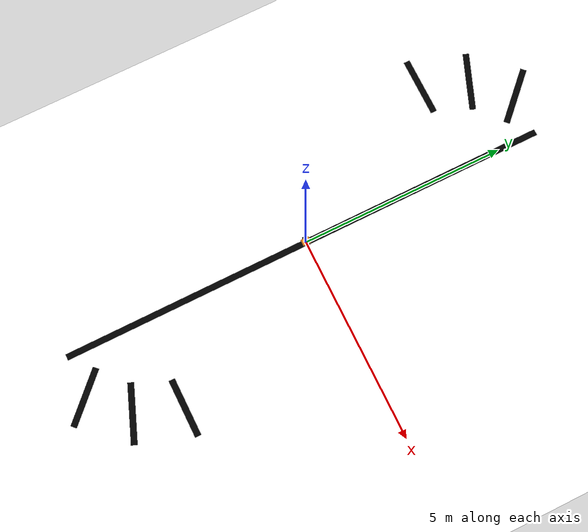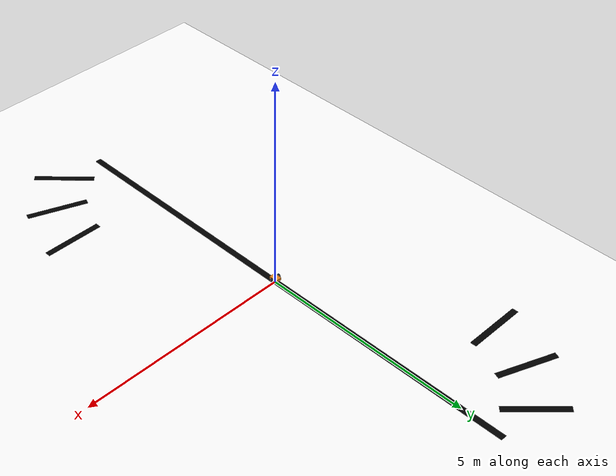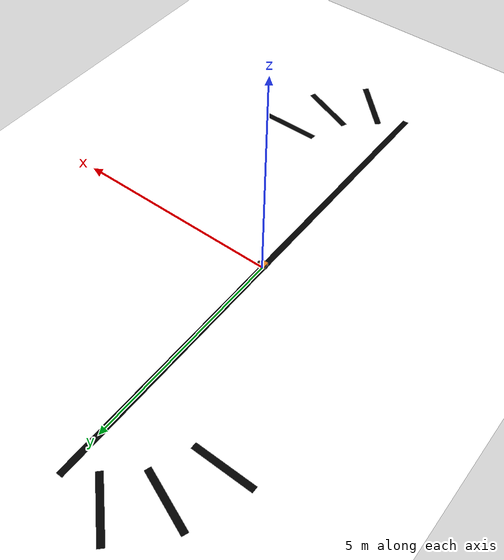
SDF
<?xml version="1.0" ?>
<sdf version="1.9">
  <world name="ir_world">
    <physics name="1ms" type="ignored">
      <max_step_size>0.001</max_step_size>
      <real_time_factor>1.0</real_time_factor>
    </physics>
    <plugin filename="gz-sim-physics-system" name="gz::sim::systems::Physics"/>
    <plugin filename="gz-sim-sensors-system" name="gz::sim::systems::Sensors">
      <render_engine>ogre2</render_engine>
    </plugin>
    <plugin filename="gz-sim-user-commands-system" name="gz::sim::systems::UserCommands"/>
    <plugin filename="gz-sim-scene-broadcaster-system" name="gz::sim::systems::SceneBroadcaster"/>
    <light name="sun" type="directional">
      <cast_shadows>false</cast_shadows>
      <pose>0 0 20 0 0 0</pose>
      <diffuse>1.0 1.0 1.0 1</diffuse>
      <specular>0.5 0.5 0.5 1</specular>
      <direction>0 0 -1</direction>
    </light>
    <model name="ground_plane">
      <static>true</static>
      <link name="link">
        <collision name="collision"><geometry><plane><normal>0 0 1</normal><size>20 20</size></plane></geometry></collision>
        <visual name="visual">
          <geometry><plane><normal>0 0 1</normal><size>20 20</size></plane></geometry>
          <material><ambient>1 1 1 1</ambient><diffuse>1 1 1 1</diffuse></material>
        </visual>
      </link>
    </model>
    <model name="line_straight_1"><static>true</static><pose>0 3 0.001 0 0 0</pose>
      <link name="link">
        <visual name="vis"><geometry><box><size>0.15 6 0.001</size></box></geometry><material><ambient>0 0 0 1</ambient><diffuse>0 0 0 1</diffuse></material></visual>
        <collision name="col"><geometry><box><size>0.15 6 0.001</size></box></geometry></collision>
      </link>
    </model>
    <model name="line_straight_2"><static>true</static><pose>0 -3 0.001 0 0 0</pose>
      <link name="link">
        <visual name="vis"><geometry><box><size>0.15 6 0.001</size></box></geometry><material><ambient>0 0 0 1</ambient><diffuse>0 0 0 1</diffuse></material></visual>
        <collision name="col"><geometry><box><size>0.15 6 0.001</size></box></geometry></collision>
      </link>
    </model>
    <model name="line_curve_n1"><static>true</static><pose>-1.0 6.0 0.001 0 0 0.785</pose>
      <link name="link"><visual name="vis"><geometry><box><size>0.15 1.4 0.001</size></box></geometry><material><ambient>0 0 0 1</ambient><diffuse>0 0 0 1</diffuse></material></visual><collision name="col"><geometry><box><size>0.15 1.4 0.001</size></box></geometry></collision></link></model>
    <model name="line_curve_n2"><static>true</static><pose>-1.8 5.2 0.001 0 0 1.2</pose>
      <link name="link"><visual name="vis"><geometry><box><size>0.15 1.4 0.001</size></box></geometry><material><ambient>0 0 0 1</ambient><diffuse>0 0 0 1</diffuse></material></visual><collision name="col"><geometry><box><size>0.15 1.4 0.001</size></box></geometry></collision></link></model>
    <model name="line_curve_n3"><static>true</static><pose>-2.2 4.1 0.001 0 0 1.57</pose>
      <link name="link"><visual name="vis"><geometry><box><size>0.15 1.4 0.001</size></box></geometry><material><ambient>0 0 0 1</ambient><diffuse>0 0 0 1</diffuse></material></visual><collision name="col"><geometry><box><size>0.15 1.4 0.001</size></box></geometry></collision></link></model>
    <model name="line_curve_s1"><static>true</static><pose>1.0 -6.0 0.001 0 0 0.785</pose>
      <link name="link"><visual name="vis"><geometry><box><size>0.15 1.4 0.001</size></box></geometry><material><ambient>0 0 0 1</ambient><diffuse>0 0 0 1</diffuse></material></visual><collision name="col"><geometry><box><size>0.15 1.4 0.001</size></box></geometry></collision></link></model>
    <model name="line_curve_s2"><static>true</static><pose>1.8 -5.2 0.001 0 0 1.2</pose>
      <link name="link"><visual name="vis"><geometry><box><size>0.15 1.4 0.001</size></box></geometry><material><ambient>0 0 0 1</ambient><diffuse>0 0 0 1</diffuse></material></visual><collision name="col"><geometry><box><size>0.15 1.4 0.001</size></box></geometry></collision></link></model>
    <model name="line_curve_s3"><static>true</static><pose>2.2 -4.1 0.001 0 0 1.57</pose>
      <link name="link"><visual name="vis"><geometry><box><size>0.15 1.4 0.001</size></box></geometry><material><ambient>0 0 0 1</ambient><diffuse>0 0 0 1</diffuse></material></visual><collision name="col"><geometry><box><size>0.15 1.4 0.001</size></box></geometry></collision></link></model>
    <include>
      <uri>model://ir_robot</uri>
      <pose>0 0 0.1 0 0 1.5707</pose>
    </include>
  </world>
</sdf>

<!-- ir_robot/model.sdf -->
<sdf version="1.9">
  <model name="ir_robot">
    <link name="base_link">
      <inertial><mass>2.0</mass><inertia><ixx>0.05</ixx><iyy>0.05</iyy><izz>0.05</izz></inertia></inertial>
      <collision name="col"><geometry><box><size>0.2 0.15 0.06</size></box></geometry></collision>
      <visual name="vis">
        <geometry><box><size>0.2 0.15 0.06</size></box></geometry>
        <material><ambient>0.9 0.5 0.1 1</ambient><diffuse>0.9 0.5 0.1 1</diffuse></material>
      </visual>
    </link>
    <link name="left_wheel">
      <pose>0 0.1 0 -1.5707 0 0</pose>
      <inertial><mass>0.5</mass><inertia><ixx>0.005</ixx><iyy>0.005</iyy><izz>0.005</izz></inertia></inertial>
      <collision name="col"><geometry><cylinder><radius>0.05</radius><length>0.02</length></cylinder></geometry></collision>
      <visual name="vis">
        <geometry><cylinder><radius>0.05</radius><length>0.02</length></cylinder></geometry>
        <material><ambient>0.1 0.1 0.1 1</ambient><diffuse>0.1 0.1 0.1 1</diffuse></material>
      </visual>
    </link>
    <link name="right_wheel">
      <pose>0 -0.1 0 -1.5707 0 0</pose>
      <inertial><mass>0.5</mass><inertia><ixx>0.005</ixx><iyy>0.005</iyy><izz>0.005</izz></inertia></inertial>
      <collision name="col"><geometry><cylinder><radius>0.05</radius><length>0.02</length></cylinder></geometry></collision>
      <visual name="vis">
        <geometry><cylinder><radius>0.05</radius><length>0.02</length></cylinder></geometry>
        <material><ambient>0.1 0.1 0.1 1</ambient><diffuse>0.1 0.1 0.1 1</diffuse></material>
      </visual>
    </link>
    <link name="caster_front">
      <pose>0.08 0 -0.03 0 0 0</pose>
      <inertial><mass>0.1</mass><inertia><ixx>0.0001</ixx><iyy>0.0001</iyy><izz>0.0001</izz></inertia></inertial>
      <collision name="col"><geometry><sphere><radius>0.02</radius></sphere></geometry><surface><friction><ode><mu>0</mu><mu2>0</mu2></ode></friction></surface></collision>
      <visual name="vis"><geometry><sphere><radius>0.02</radius></sphere></geometry><material><ambient>0.5 0.5 0.5 1</ambient></material></visual>
    </link>
    <link name="caster_rear">
      <pose>-0.08 0 -0.03 0 0 0</pose>
      <inertial><mass>0.1</mass><inertia><ixx>0.0001</ixx><iyy>0.0001</iyy><izz>0.0001</izz></inertia></inertial>
      <collision name="col"><geometry><sphere><radius>0.02</radius></sphere></geometry><surface><friction><ode><mu>0</mu><mu2>0</mu2></ode></friction></surface></collision>
      <visual name="vis"><geometry><sphere><radius>0.02</radius></sphere></geometry><material><ambient>0.5 0.5 0.5 1</ambient></material></visual>
    </link>
    <link name="ir_camera_link">
      <pose>0.09 0 -0.025 0 1.5707 0</pose>
      <inertial><mass>0.01</mass><inertia><ixx>0.0001</ixx><iyy>0.0001</iyy><izz>0.0001</izz></inertia></inertial>
      <sensor name="ir_array_camera" type="camera">
        <topic>/camera/image_raw</topic>
        <update_rate>30</update_rate>
        <camera>
          <horizontal_fov>0.6</horizontal_fov>
          <image><width>160</width><height>120</height><format>R8G8B8</format></image>
          <clip><near>0.01</near><far>1.0</far></clip>
        </camera>
      </sensor>
    </link>
    <joint name="left_wheel_joint" type="revolute">
      <parent>base_link</parent><child>left_wheel</child><axis><xyz>0 0 1</xyz></axis>
    </joint>
    <joint name="right_wheel_joint" type="revolute">
      <parent>base_link</parent><child>right_wheel</child><axis><xyz>0 0 1</xyz></axis>
    </joint>
    <joint name="caster_front_joint" type="ball"><parent>base_link</parent><child>caster_front</child></joint>
    <joint name="caster_rear_joint"  type="ball"><parent>base_link</parent><child>caster_rear</child></joint>
    <joint name="ir_camera_joint" type="fixed"><parent>base_link</parent><child>ir_camera_link</child></joint>
    <plugin filename="gz-sim-diff-drive-system" name="gz::sim::systems::DiffDrive">
      <left_joint>left_wheel_joint</left_joint>
      <right_joint>right_wheel_joint</right_joint>
      <wheel_separation>0.2</wheel_separation>
      <wheel_radius>0.05</wheel_radius>
      <odom_publish_frequency>10</odom_publish_frequency>
      <topic>/cmd_vel</topic>
      <odom_topic>/odom</odom_topic>
      <frame_id>odom</frame_id>
      <child_frame_id>base_link</child_frame_id>
    </plugin>
  </model>
</sdf>
